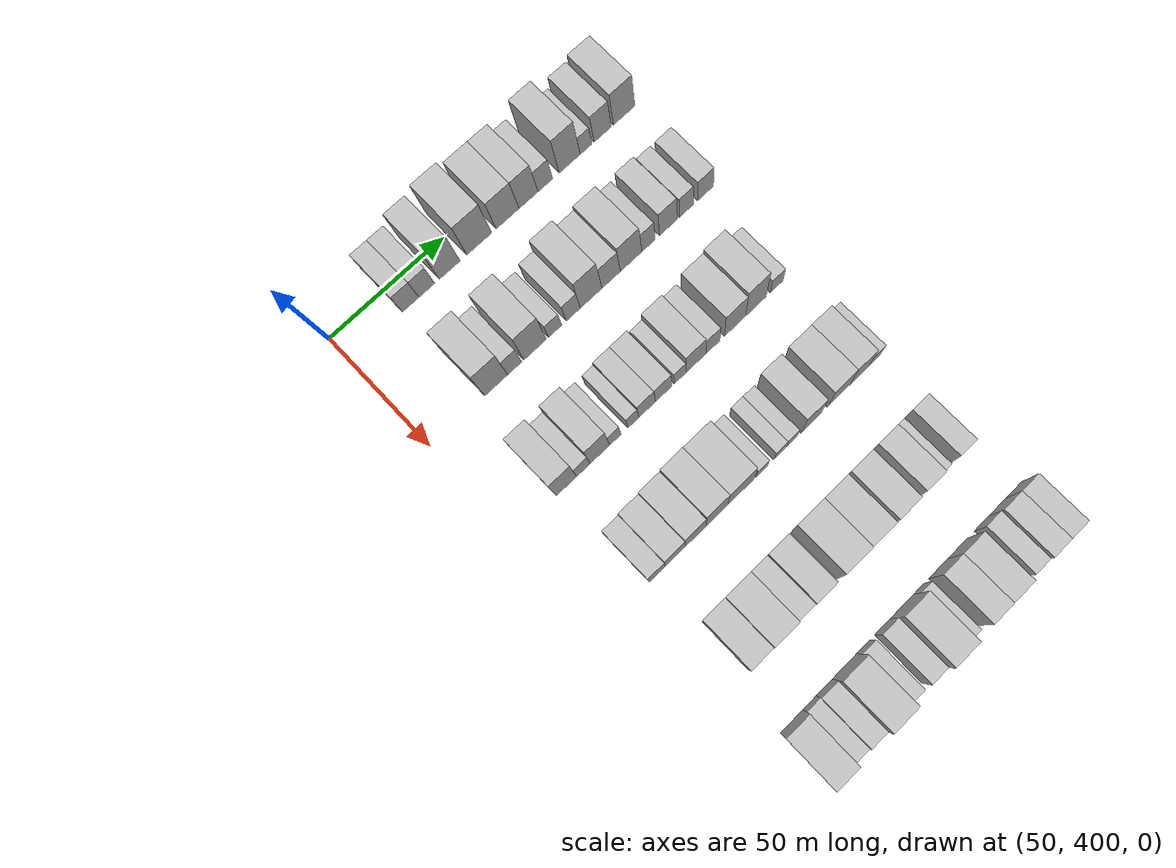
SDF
<sdf version="1.6">
 <world name="default">
  <model name="building_118">
   <static>1</static>
   <pose>50.0000 426.8114 0 0.000000 0.000000 0.000000</pose>
   <link name="link">
    <pose>0 0 7.50 0 0 0</pose>
    <collision name="collision"><geometry><box><size>20.0000 7.2259 15.0000</size></box></geometry></collision>
    <visual name="visual">
     <cast_shadows>0</cast_shadows>
     <geometry><box><size>20.0000 7.2259 15.0000</size></box></geometry>
     <material>
      <script>
       <uri>model://HANNAS_wall/materials/scripts</uri>
       <uri>model://HANNAS_wall/materials/textures</uri>
       <name>vrc/HANNAS_wall</name>
      </script>
     </material>
    </visual>
   </link>
  </model>
  <model name="building_119">
   <static>1</static>
   <pose>50.0000 433.8870 0 0.000000 0.000000 0.000000</pose>
   <link name="link">
    <pose>0 0 7.50 0 0 0</pose>
    <collision name="collision"><geometry><box><size>20.0000 6.9255 15.0000</size></box></geometry></collision>
    <visual name="visual">
     <cast_shadows>0</cast_shadows>
     <geometry><box><size>20.0000 6.9255 15.0000</size></box></geometry>
     <material>
      <script>
       <uri>model://HANNAS_wall/materials/scripts</uri>
       <uri>model://HANNAS_wall/materials/textures</uri>
       <name>vrc/HANNAS_wall</name>
      </script>
     </material>
    </visual>
   </link>
  </model>
  <model name="building_120">
   <static>1</static>
   <pose>50.0000 443.9383 0 0.000000 0.000000 0.000000</pose>
   <link name="link">
    <pose>0 0 10.50 0 0 0</pose>
    <collision name="collision"><geometry><box><size>20.0000 9.1771 21.0000</size></box></geometry></collision>
    <visual name="visual">
     <cast_shadows>0</cast_shadows>
     <geometry><box><size>20.0000 9.1771 21.0000</size></box></geometry>
     <material>
      <script>
       <uri>model://HANNAS_wall/materials/scripts</uri>
       <uri>model://HANNAS_wall/materials/textures</uri>
       <name>vrc/HANNAS_wall</name>
      </script>
     </material>
    </visual>
   </link>
  </model>
  <model name="building_121">
   <static>1</static>
   <pose>50.0000 457.0970 0 0.000000 0.000000 0.000000</pose>
   <link name="link">
    <pose>0 0 12.00 0 0 0</pose>
    <collision name="collision"><geometry><box><size>20.0000 11.1402 24.0000</size></box></geometry></collision>
    <visual name="visual">
     <cast_shadows>0</cast_shadows>
     <geometry><box><size>20.0000 11.1402 24.0000</size></box></geometry>
     <material>
      <script>
       <uri>model://HANNAS_wall/materials/scripts</uri>
       <uri>model://HANNAS_wall/materials/textures</uri>
       <name>vrc/HANNAS_wall</name>
      </script>
     </material>
    </visual>
   </link>
  </model>
  <model name="building_122">
   <static>1</static>
   <pose>50.0000 469.8556 0 0.000000 0.000000 0.000000</pose>
   <link name="link">
    <pose>0 0 10.50 0 0 0</pose>
    <collision name="collision"><geometry><box><size>20.0000 10.3770 21.0000</size></box></geometry></collision>
    <visual name="visual">
     <cast_shadows>0</cast_shadows>
     <geometry><box><size>20.0000 10.3770 21.0000</size></box></geometry>
     <material>
      <script>
       <uri>model://HANNAS_wall/materials/scripts</uri>
       <uri>model://HANNAS_wall/materials/textures</uri>
       <name>vrc/HANNAS_wall</name>
      </script>
     </material>
    </visual>
   </link>
  </model>
  <model name="building_123">
   <static>1</static>
   <pose>50.0000 479.3760 0 0.000000 0.000000 0.000000</pose>
   <link name="link">
    <pose>0 0 10.50 0 0 0</pose>
    <collision name="collision"><geometry><box><size>20.0000 8.6639 21.0000</size></box></geometry></collision>
    <visual name="visual">
     <cast_shadows>0</cast_shadows>
     <geometry><box><size>20.0000 8.6639 21.0000</size></box></geometry>
     <material>
      <script>
       <uri>model://HANNAS_wall/materials/scripts</uri>
       <uri>model://HANNAS_wall/materials/textures</uri>
       <name>vrc/HANNAS_wall</name>
      </script>
     </material>
    </visual>
   </link>
  </model>
  <model name="building_124">
   <static>1</static>
   <pose>50.0000 487.0819 0 0.000000 0.000000 0.000000</pose>
   <link name="link">
    <pose>0 0 7.50 0 0 0</pose>
    <collision name="collision"><geometry><box><size>20.0000 6.7478 15.0000</size></box></geometry></collision>
    <visual name="visual">
     <cast_shadows>0</cast_shadows>
     <geometry><box><size>20.0000 6.7478 15.0000</size></box></geometry>
     <material>
      <script>
       <uri>model://HANNAS_wall/materials/scripts</uri>
       <uri>model://HANNAS_wall/materials/textures</uri>
       <name>vrc/HANNAS_wall</name>
      </script>
     </material>
    </visual>
   </link>
  </model>
  <model name="building_125">
   <static>1</static>
   <pose>50.0000 498.3216 0 0.000000 0.000000 0.000000</pose>
   <link name="link">
    <pose>0 0 12.00 0 0 0</pose>
    <collision name="collision"><geometry><box><size>20.0000 9.7318 24.0000</size></box></geometry></collision>
    <visual name="visual">
     <cast_shadows>0</cast_shadows>
     <geometry><box><size>20.0000 9.7318 24.0000</size></box></geometry>
     <material>
      <script>
       <uri>model://HANNAS_wall/materials/scripts</uri>
       <uri>model://HANNAS_wall/materials/textures</uri>
       <name>vrc/HANNAS_wall</name>
      </script>
     </material>
    </visual>
   </link>
  </model>
  <model name="building_126">
   <static>1</static>
   <pose>50.0000 505.9289 0 0.000000 0.000000 0.000000</pose>
   <link name="link">
    <pose>0 0 6.00 0 0 0</pose>
    <collision name="collision"><geometry><box><size>20.0000 5.4828 12.0000</size></box></geometry></collision>
    <visual name="visual">
     <cast_shadows>0</cast_shadows>
     <geometry><box><size>20.0000 5.4828 12.0000</size></box></geometry>
     <material>
      <script>
       <uri>model://HANNAS_wall/materials/scripts</uri>
       <uri>model://HANNAS_wall/materials/textures</uri>
       <name>vrc/HANNAS_wall</name>
      </script>
     </material>
    </visual>
   </link>
  </model>
  <model name="building_127">
   <static>1</static>
   <pose>50.0000 513.7252 0 0.000000 0.000000 0.000000</pose>
   <link name="link">
    <pose>0 0 9.00 0 0 0</pose>
    <collision name="collision"><geometry><box><size>20.0000 8.1097 18.0000</size></box></geometry></collision>
    <visual name="visual">
     <cast_shadows>0</cast_shadows>
     <geometry><box><size>20.0000 8.1097 18.0000</size></box></geometry>
     <material>
      <script>
       <uri>model://HANNAS_wall/materials/scripts</uri>
       <uri>model://HANNAS_wall/materials/textures</uri>
       <name>vrc/HANNAS_wall</name>
      </script>
     </material>
    </visual>
   </link>
  </model>
  <model name="building_128">
   <static>1</static>
   <pose>50.0000 523.8451 0 0.000000 0.000000 0.000000</pose>
   <link name="link">
    <pose>0 0 10.50 0 0 0</pose>
    <collision name="collision"><geometry><box><size>20.0000 10.1301 21.0000</size></box></geometry></collision>
    <visual name="visual">
     <cast_shadows>0</cast_shadows>
     <geometry><box><size>20.0000 10.1301 21.0000</size></box></geometry>
     <material>
      <script>
       <uri>model://HANNAS_wall/materials/scripts</uri>
       <uri>model://HANNAS_wall/materials/textures</uri>
       <name>vrc/HANNAS_wall</name>
      </script>
     </material>
    </visual>
   </link>
  </model>
  <model name="building_256">
   <static>1</static>
   <pose>90.0000 428.6201 0 0.000000 0.000000 0.000000</pose>
   <link name="link">
    <pose>0 0 12.00 0 0 0</pose>
    <collision name="collision"><geometry><box><size>20.0000 9.9812 24.0000</size></box></geometry></collision>
    <visual name="visual">
     <cast_shadows>0</cast_shadows>
     <geometry><box><size>20.0000 9.9812 24.0000</size></box></geometry>
     <material>
      <script>
       <uri>model://HANNAS_wall/materials/scripts</uri>
       <uri>model://HANNAS_wall/materials/textures</uri>
       <name>vrc/HANNAS_wall</name>
      </script>
     </material>
    </visual>
   </link>
  </model>
  <model name="building_257">
   <static>1</static>
   <pose>90.0000 436.6834 0 0.000000 0.000000 0.000000</pose>
   <link name="link">
    <pose>0 0 7.50 0 0 0</pose>
    <collision name="collision"><geometry><box><size>20.0000 6.1454 15.0000</size></box></geometry></collision>
    <visual name="visual">
     <cast_shadows>0</cast_shadows>
     <geometry><box><size>20.0000 6.1454 15.0000</size></box></geometry>
     <material>
      <script>
       <uri>model://HANNAS_wall/materials/scripts</uri>
       <uri>model://HANNAS_wall/materials/textures</uri>
       <name>vrc/HANNAS_wall</name>
      </script>
     </material>
    </visual>
   </link>
  </model>
  <model name="building_258">
   <static>1</static>
   <pose>90.0000 445.7030 0 0.000000 0.000000 0.000000</pose>
   <link name="link">
    <pose>0 0 12.00 0 0 0</pose>
    <collision name="collision"><geometry><box><size>20.0000 9.8937 24.0000</size></box></geometry></collision>
    <visual name="visual">
     <cast_shadows>0</cast_shadows>
     <geometry><box><size>20.0000 9.8937 24.0000</size></box></geometry>
     <material>
      <script>
       <uri>model://HANNAS_wall/materials/scripts</uri>
       <uri>model://HANNAS_wall/materials/textures</uri>
       <name>vrc/HANNAS_wall</name>
      </script>
     </material>
    </visual>
   </link>
  </model>
  <model name="building_259">
   <static>1</static>
   <pose>90.0000 454.6156 0 0.000000 0.000000 0.000000</pose>
   <link name="link">
    <pose>0 0 6.00 0 0 0</pose>
    <collision name="collision"><geometry><box><size>20.0000 5.9315 12.0000</size></box></geometry></collision>
    <visual name="visual">
     <cast_shadows>0</cast_shadows>
     <geometry><box><size>20.0000 5.9315 12.0000</size></box></geometry>
     <material>
      <script>
       <uri>model://HANNAS_wall/materials/scripts</uri>
       <uri>model://HANNAS_wall/materials/textures</uri>
       <name>vrc/HANNAS_wall</name>
      </script>
     </material>
    </visual>
   </link>
  </model>
  <model name="building_260">
   <static>1</static>
   <pose>90.0000 462.7393 0 0.000000 0.000000 0.000000</pose>
   <link name="link">
    <pose>0 0 7.50 0 0 0</pose>
    <collision name="collision"><geometry><box><size>20.0000 6.3159 15.0000</size></box></geometry></collision>
    <visual name="visual">
     <cast_shadows>0</cast_shadows>
     <geometry><box><size>20.0000 6.3159 15.0000</size></box></geometry>
     <material>
      <script>
       <uri>model://HANNAS_wall/materials/scripts</uri>
       <uri>model://HANNAS_wall/materials/textures</uri>
       <name>vrc/HANNAS_wall</name>
      </script>
     </material>
    </visual>
   </link>
  </model>
  <model name="building_261">
   <static>1</static>
   <pose>90.0000 470.7719 0 0.000000 0.000000 0.000000</pose>
   <link name="link">
    <pose>0 0 12.00 0 0 0</pose>
    <collision name="collision"><geometry><box><size>20.0000 9.7494 24.0000</size></box></geometry></collision>
    <visual name="visual">
     <cast_shadows>0</cast_shadows>
     <geometry><box><size>20.0000 9.7494 24.0000</size></box></geometry>
     <material>
      <script>
       <uri>model://HANNAS_wall/materials/scripts</uri>
       <uri>model://HANNAS_wall/materials/textures</uri>
       <name>vrc/HANNAS_wall</name>
      </script>
     </material>
    </visual>
   </link>
  </model>
  <model name="building_262">
   <static>1</static>
   <pose>90.0000 479.8465 0 0.000000 0.000000 0.000000</pose>
   <link name="link">
    <pose>0 0 9.00 0 0 0</pose>
    <collision name="collision"><geometry><box><size>20.0000 8.3998 18.0000</size></box></geometry></collision>
    <visual name="visual">
     <cast_shadows>0</cast_shadows>
     <geometry><box><size>20.0000 8.3998 18.0000</size></box></geometry>
     <material>
      <script>
       <uri>model://HANNAS_wall/materials/scripts</uri>
       <uri>model://HANNAS_wall/materials/textures</uri>
       <name>vrc/HANNAS_wall</name>
      </script>
     </material>
    </visual>
   </link>
  </model>
  <model name="building_263">
   <static>1</static>
   <pose>90.0000 488.9902 0 0.000000 0.000000 0.000000</pose>
   <link name="link">
    <pose>0 0 10.50 0 0 0</pose>
    <collision name="collision"><geometry><box><size>20.0000 9.8877 21.0000</size></box></geometry></collision>
    <visual name="visual">
     <cast_shadows>0</cast_shadows>
     <geometry><box><size>20.0000 9.8877 21.0000</size></box></geometry>
     <material>
      <script>
       <uri>model://HANNAS_wall/materials/scripts</uri>
       <uri>model://HANNAS_wall/materials/textures</uri>
       <name>vrc/HANNAS_wall</name>
      </script>
     </material>
    </visual>
   </link>
  </model>
  <model name="building_264">
   <static>1</static>
   <pose>90.0000 497.0263 0 0.000000 0.000000 0.000000</pose>
   <link name="link">
    <pose>0 0 7.50 0 0 0</pose>
    <collision name="collision"><geometry><box><size>20.0000 6.1845 15.0000</size></box></geometry></collision>
    <visual name="visual">
     <cast_shadows>0</cast_shadows>
     <geometry><box><size>20.0000 6.1845 15.0000</size></box></geometry>
     <material>
      <script>
       <uri>model://HANNAS_wall/materials/scripts</uri>
       <uri>model://HANNAS_wall/materials/textures</uri>
       <name>vrc/HANNAS_wall</name>
      </script>
     </material>
    </visual>
   </link>
  </model>
  <model name="building_265">
   <static>1</static>
   <pose>90.0000 506.2481 0 0.000000 0.000000 0.000000</pose>
   <link name="link">
    <pose>0 0 9.00 0 0 0</pose>
    <collision name="collision"><geometry><box><size>20.0000 8.2591 18.0000</size></box></geometry></collision>
    <visual name="visual">
     <cast_shadows>0</cast_shadows>
     <geometry><box><size>20.0000 8.2591 18.0000</size></box></geometry>
     <material>
      <script>
       <uri>model://HANNAS_wall/materials/scripts</uri>
       <uri>model://HANNAS_wall/materials/textures</uri>
       <name>vrc/HANNAS_wall</name>
      </script>
     </material>
    </visual>
   </link>
  </model>
  <model name="building_266">
   <static>1</static>
   <pose>90.0000 514.6310 0 0.000000 0.000000 0.000000</pose>
   <link name="link">
    <pose>0 0 7.50 0 0 0</pose>
    <collision name="collision"><geometry><box><size>20.0000 6.5067 15.0000</size></box></geometry></collision>
    <visual name="visual">
     <cast_shadows>0</cast_shadows>
     <geometry><box><size>20.0000 6.5067 15.0000</size></box></geometry>
     <material>
      <script>
       <uri>model://HANNAS_wall/materials/scripts</uri>
       <uri>model://HANNAS_wall/materials/textures</uri>
       <name>vrc/HANNAS_wall</name>
      </script>
     </material>
    </visual>
   </link>
  </model>
  <model name="building_267">
   <static>1</static>
   <pose>90.0000 523.6233 0 0.000000 0.000000 0.000000</pose>
   <link name="link">
    <pose>0 0 7.50 0 0 0</pose>
    <collision name="collision"><geometry><box><size>20.0000 7.4780 15.0000</size></box></geometry></collision>
    <visual name="visual">
     <cast_shadows>0</cast_shadows>
     <geometry><box><size>20.0000 7.4780 15.0000</size></box></geometry>
     <material>
      <script>
       <uri>model://HANNAS_wall/materials/scripts</uri>
       <uri>model://HANNAS_wall/materials/textures</uri>
       <name>vrc/HANNAS_wall</name>
      </script>
     </material>
    </visual>
   </link>
  </model>
  <model name="building_400">
   <static>1</static>
   <pose>130.0000 422.5033 0 0.000000 0.000000 0.000000</pose>
   <link name="link">
    <pose>0 0 10.50 0 0 0</pose>
    <collision name="collision"><geometry><box><size>20.0000 8.7504 21.0000</size></box></geometry></collision>
    <visual name="visual">
     <cast_shadows>0</cast_shadows>
     <geometry><box><size>20.0000 8.7504 21.0000</size></box></geometry>
     <material>
      <script>
       <uri>model://HANNAS_wall/materials/scripts</uri>
       <uri>model://HANNAS_wall/materials/textures</uri>
       <name>vrc/HANNAS_wall</name>
      </script>
     </material>
    </visual>
   </link>
  </model>
  <model name="building_401">
   <static>1</static>
   <pose>130.0000 429.8107 0 0.000000 0.000000 0.000000</pose>
   <link name="link">
    <pose>0 0 6.00 0 0 0</pose>
    <collision name="collision"><geometry><box><size>20.0000 5.8643 12.0000</size></box></geometry></collision>
    <visual name="visual">
     <cast_shadows>0</cast_shadows>
     <geometry><box><size>20.0000 5.8643 12.0000</size></box></geometry>
     <material>
      <script>
       <uri>model://HANNAS_wall/materials/scripts</uri>
       <uri>model://HANNAS_wall/materials/textures</uri>
       <name>vrc/HANNAS_wall</name>
      </script>
     </material>
    </visual>
   </link>
  </model>
  <model name="building_402">
   <static>1</static>
   <pose>130.0000 437.0281 0 0.000000 0.000000 0.000000</pose>
   <link name="link">
    <pose>0 0 10.50 0 0 0</pose>
    <collision name="collision"><geometry><box><size>20.0000 8.5706 21.0000</size></box></geometry></collision>
    <visual name="visual">
     <cast_shadows>0</cast_shadows>
     <geometry><box><size>20.0000 8.5706 21.0000</size></box></geometry>
     <material>
      <script>
       <uri>model://HANNAS_wall/materials/scripts</uri>
       <uri>model://HANNAS_wall/materials/textures</uri>
       <name>vrc/HANNAS_wall</name>
      </script>
     </material>
    </visual>
   </link>
  </model>
  <model name="building_403">
   <static>1</static>
   <pose>130.0000 443.8435 0 0.000000 0.000000 0.000000</pose>
   <link name="link">
    <pose>0 0 6.00 0 0 0</pose>
    <collision name="collision"><geometry><box><size>20.0000 5.0601 12.0000</size></box></geometry></collision>
    <visual name="visual">
     <cast_shadows>0</cast_shadows>
     <geometry><box><size>20.0000 5.0601 12.0000</size></box></geometry>
     <material>
      <script>
       <uri>model://HANNAS_wall/materials/scripts</uri>
       <uri>model://HANNAS_wall/materials/textures</uri>
       <name>vrc/HANNAS_wall</name>
      </script>
     </material>
    </visual>
   </link>
  </model>
  <model name="building_404">
   <static>1</static>
   <pose>130.0000 451.8085 0 0.000000 0.000000 0.000000</pose>
   <link name="link">
    <pose>0 0 6.00 0 0 0</pose>
    <collision name="collision"><geometry><box><size>20.0000 4.8699 12.0000</size></box></geometry></collision>
    <visual name="visual">
     <cast_shadows>0</cast_shadows>
     <geometry><box><size>20.0000 4.8699 12.0000</size></box></geometry>
     <material>
      <script>
       <uri>model://HANNAS_wall/materials/scripts</uri>
       <uri>model://HANNAS_wall/materials/textures</uri>
       <name>vrc/HANNAS_wall</name>
      </script>
     </material>
    </visual>
   </link>
  </model>
  <model name="building_405">
   <static>1</static>
   <pose>130.0000 457.9557 0 0.000000 0.000000 0.000000</pose>
   <link name="link">
    <pose>0 0 7.50 0 0 0</pose>
    <collision name="collision"><geometry><box><size>20.0000 7.4245 15.0000</size></box></geometry></collision>
    <visual name="visual">
     <cast_shadows>0</cast_shadows>
     <geometry><box><size>20.0000 7.4245 15.0000</size></box></geometry>
     <material>
      <script>
       <uri>model://HANNAS_wall/materials/scripts</uri>
       <uri>model://HANNAS_wall/materials/textures</uri>
       <name>vrc/HANNAS_wall</name>
      </script>
     </material>
    </visual>
   </link>
  </model>
  <model name="building_406">
   <static>1</static>
   <pose>130.0000 465.3787 0 0.000000 0.000000 0.000000</pose>
   <link name="link">
    <pose>0 0 7.50 0 0 0</pose>
    <collision name="collision"><geometry><box><size>20.0000 7.4216 15.0000</size></box></geometry></collision>
    <visual name="visual">
     <cast_shadows>0</cast_shadows>
     <geometry><box><size>20.0000 7.4216 15.0000</size></box></geometry>
     <material>
      <script>
       <uri>model://HANNAS_wall/materials/scripts</uri>
       <uri>model://HANNAS_wall/materials/textures</uri>
       <name>vrc/HANNAS_wall</name>
      </script>
     </material>
    </visual>
   </link>
  </model>
  <model name="building_407">
   <static>1</static>
   <pose>130.0000 472.7820 0 0.000000 0.000000 0.000000</pose>
   <link name="link">
    <pose>0 0 6.00 0 0 0</pose>
    <collision name="collision"><geometry><box><size>20.0000 5.3851 12.0000</size></box></geometry></collision>
    <visual name="visual">
     <cast_shadows>0</cast_shadows>
     <geometry><box><size>20.0000 5.3851 12.0000</size></box></geometry>
     <material>
      <script>
       <uri>model://HANNAS_wall/materials/scripts</uri>
       <uri>model://HANNAS_wall/materials/textures</uri>
       <name>vrc/HANNAS_wall</name>
      </script>
     </material>
    </visual>
   </link>
  </model>
  <model name="building_408">
   <static>1</static>
   <pose>130.0000 479.9582 0 0.000000 0.000000 0.000000</pose>
   <link name="link">
    <pose>0 0 9.00 0 0 0</pose>
    <collision name="collision"><geometry><box><size>20.0000 8.9673 18.0000</size></box></geometry></collision>
    <visual name="visual">
     <cast_shadows>0</cast_shadows>
     <geometry><box><size>20.0000 8.9673 18.0000</size></box></geometry>
     <material>
      <script>
       <uri>model://HANNAS_wall/materials/scripts</uri>
       <uri>model://HANNAS_wall/materials/textures</uri>
       <name>vrc/HANNAS_wall</name>
      </script>
     </material>
    </visual>
   </link>
  </model>
  <model name="building_409">
   <static>1</static>
   <pose>130.0000 487.6770 0 0.000000 0.000000 0.000000</pose>
   <link name="link">
    <pose>0 0 7.50 0 0 0</pose>
    <collision name="collision"><geometry><box><size>20.0000 6.4703 15.0000</size></box></geometry></collision>
    <visual name="visual">
     <cast_shadows>0</cast_shadows>
     <geometry><box><size>20.0000 6.4703 15.0000</size></box></geometry>
     <material>
      <script>
       <uri>model://HANNAS_wall/materials/scripts</uri>
       <uri>model://HANNAS_wall/materials/textures</uri>
       <name>vrc/HANNAS_wall</name>
      </script>
     </material>
    </visual>
   </link>
  </model>
  <model name="building_410">
   <static>1</static>
   <pose>130.0000 497.7847 0 0.000000 0.000000 0.000000</pose>
   <link name="link">
    <pose>0 0 10.50 0 0 0</pose>
    <collision name="collision"><geometry><box><size>20.0000 9.7451 21.0000</size></box></geometry></collision>
    <visual name="visual">
     <cast_shadows>0</cast_shadows>
     <geometry><box><size>20.0000 9.7451 21.0000</size></box></geometry>
     <material>
      <script>
       <uri>model://HANNAS_wall/materials/scripts</uri>
       <uri>model://HANNAS_wall/materials/textures</uri>
       <name>vrc/HANNAS_wall</name>
      </script>
     </material>
    </visual>
   </link>
  </model>
  <model name="building_411">
   <static>1</static>
   <pose>130.0000 507.4720 0 0.000000 0.000000 0.000000</pose>
   <link name="link">
    <pose>0 0 12.00 0 0 0</pose>
    <collision name="collision"><geometry><box><size>20.0000 9.6294 24.0000</size></box></geometry></collision>
    <visual name="visual">
     <cast_shadows>0</cast_shadows>
     <geometry><box><size>20.0000 9.6294 24.0000</size></box></geometry>
     <material>
      <script>
       <uri>model://HANNAS_wall/materials/scripts</uri>
       <uri>model://HANNAS_wall/materials/textures</uri>
       <name>vrc/HANNAS_wall</name>
      </script>
     </material>
    </visual>
   </link>
  </model>
  <model name="building_412">
   <static>1</static>
   <pose>130.0000 517.2540 0 0.000000 0.000000 0.000000</pose>
   <link name="link">
    <pose>0 0 6.00 0 0 0</pose>
    <collision name="collision"><geometry><box><size>20.0000 5.9347 12.0000</size></box></geometry></collision>
    <visual name="visual">
     <cast_shadows>0</cast_shadows>
     <geometry><box><size>20.0000 5.9347 12.0000</size></box></geometry>
     <material>
      <script>
       <uri>model://HANNAS_wall/materials/scripts</uri>
       <uri>model://HANNAS_wall/materials/textures</uri>
       <name>vrc/HANNAS_wall</name>
      </script>
     </material>
    </visual>
   </link>
  </model>
  <model name="building_546">
   <static>1</static>
   <pose>170.0000 423.9746 0 0.000000 0.000000 0.000000</pose>
   <link name="link">
    <pose>0 0 7.50 0 0 0</pose>
    <collision name="collision"><geometry><box><size>20.0000 6.9885 15.0000</size></box></geometry></collision>
    <visual name="visual">
     <cast_shadows>0</cast_shadows>
     <geometry><box><size>20.0000 6.9885 15.0000</size></box></geometry>
     <material>
      <script>
       <uri>model://HANNAS_wall/materials/scripts</uri>
       <uri>model://HANNAS_wall/materials/textures</uri>
       <name>vrc/HANNAS_wall</name>
      </script>
     </material>
    </visual>
   </link>
  </model>
  <model name="building_547">
   <static>1</static>
   <pose>170.0000 431.7851 0 0.000000 0.000000 0.000000</pose>
   <link name="link">
    <pose>0 0 9.00 0 0 0</pose>
    <collision name="collision"><geometry><box><size>20.0000 8.6325 18.0000</size></box></geometry></collision>
    <visual name="visual">
     <cast_shadows>0</cast_shadows>
     <geometry><box><size>20.0000 8.6325 18.0000</size></box></geometry>
     <material>
      <script>
       <uri>model://HANNAS_wall/materials/scripts</uri>
       <uri>model://HANNAS_wall/materials/textures</uri>
       <name>vrc/HANNAS_wall</name>
      </script>
     </material>
    </visual>
   </link>
  </model>
  <model name="building_548">
   <static>1</static>
   <pose>170.0000 440.6282 0 0.000000 0.000000 0.000000</pose>
   <link name="link">
    <pose>0 0 10.50 0 0 0</pose>
    <collision name="collision"><geometry><box><size>20.0000 9.0537 21.0000</size></box></geometry></collision>
    <visual name="visual">
     <cast_shadows>0</cast_shadows>
     <geometry><box><size>20.0000 9.0537 21.0000</size></box></geometry>
     <material>
      <script>
       <uri>model://HANNAS_wall/materials/scripts</uri>
       <uri>model://HANNAS_wall/materials/textures</uri>
       <name>vrc/HANNAS_wall</name>
      </script>
     </material>
    </visual>
   </link>
  </model>
  <model name="building_549">
   <static>1</static>
   <pose>170.0000 449.9596 0 0.000000 0.000000 0.000000</pose>
   <link name="link">
    <pose>0 0 12.00 0 0 0</pose>
    <collision name="collision"><geometry><box><size>20.0000 9.6090 24.0000</size></box></geometry></collision>
    <visual name="visual">
     <cast_shadows>0</cast_shadows>
     <geometry><box><size>20.0000 9.6090 24.0000</size></box></geometry>
     <material>
      <script>
       <uri>model://HANNAS_wall/materials/scripts</uri>
       <uri>model://HANNAS_wall/materials/textures</uri>
       <name>vrc/HANNAS_wall</name>
      </script>
     </material>
    </visual>
   </link>
  </model>
  <model name="building_550">
   <static>1</static>
   <pose>170.0000 460.5825 0 0.000000 0.000000 0.000000</pose>
   <link name="link">
    <pose>0 0 12.00 0 0 0</pose>
    <collision name="collision"><geometry><box><size>20.0000 11.6369 24.0000</size></box></geometry></collision>
    <visual name="visual">
     <cast_shadows>0</cast_shadows>
     <geometry><box><size>20.0000 11.6369 24.0000</size></box></geometry>
     <material>
      <script>
       <uri>model://HANNAS_wall/materials/scripts</uri>
       <uri>model://HANNAS_wall/materials/textures</uri>
       <name>vrc/HANNAS_wall</name>
      </script>
     </material>
    </visual>
   </link>
  </model>
  <model name="building_551">
   <static>1</static>
   <pose>170.0000 469.9690 0 0.000000 0.000000 0.000000</pose>
   <link name="link">
    <pose>0 0 6.00 0 0 0</pose>
    <collision name="collision"><geometry><box><size>20.0000 5.1360 12.0000</size></box></geometry></collision>
    <visual name="visual">
     <cast_shadows>0</cast_shadows>
     <geometry><box><size>20.0000 5.1360 12.0000</size></box></geometry>
     <material>
      <script>
       <uri>model://HANNAS_wall/materials/scripts</uri>
       <uri>model://HANNAS_wall/materials/textures</uri>
       <name>vrc/HANNAS_wall</name>
      </script>
     </material>
    </visual>
   </link>
  </model>
  <model name="building_552">
   <static>1</static>
   <pose>170.0000 478.1620 0 0.000000 0.000000 0.000000</pose>
   <link name="link">
    <pose>0 0 6.00 0 0 0</pose>
    <collision name="collision"><geometry><box><size>20.0000 5.2501 12.0000</size></box></geometry></collision>
    <visual name="visual">
     <cast_shadows>0</cast_shadows>
     <geometry><box><size>20.0000 5.2501 12.0000</size></box></geometry>
     <material>
      <script>
       <uri>model://HANNAS_wall/materials/scripts</uri>
       <uri>model://HANNAS_wall/materials/textures</uri>
       <name>vrc/HANNAS_wall</name>
      </script>
     </material>
    </visual>
   </link>
  </model>
  <model name="building_553">
   <static>1</static>
   <pose>170.0000 483.3415 0 0.000000 0.000000 0.000000</pose>
   <link name="link">
    <pose>0 0 6.00 0 0 0</pose>
    <collision name="collision"><geometry><box><size>20.0000 5.1090 12.0000</size></box></geometry></collision>
    <visual name="visual">
     <cast_shadows>0</cast_shadows>
     <geometry><box><size>20.0000 5.1090 12.0000</size></box></geometry>
     <material>
      <script>
       <uri>model://HANNAS_wall/materials/scripts</uri>
       <uri>model://HANNAS_wall/materials/textures</uri>
       <name>vrc/HANNAS_wall</name>
      </script>
     </material>
    </visual>
   </link>
  </model>
  <model name="building_554">
   <static>1</static>
   <pose>170.0000 492.4625 0 0.000000 0.000000 0.000000</pose>
   <link name="link">
    <pose>0 0 10.50 0 0 0</pose>
    <collision name="collision"><geometry><box><size>20.0000 9.1330 21.0000</size></box></geometry></collision>
    <visual name="visual">
     <cast_shadows>0</cast_shadows>
     <geometry><box><size>20.0000 9.1330 21.0000</size></box></geometry>
     <material>
      <script>
       <uri>model://HANNAS_wall/materials/scripts</uri>
       <uri>model://HANNAS_wall/materials/textures</uri>
       <name>vrc/HANNAS_wall</name>
      </script>
     </material>
    </visual>
   </link>
  </model>
  <model name="building_555">
   <static>1</static>
   <pose>170.0000 505.1767 0 0.000000 0.000000 0.000000</pose>
   <link name="link">
    <pose>0 0 10.50 0 0 0</pose>
    <collision name="collision"><geometry><box><size>20.0000 10.2952 21.0000</size></box></geometry></collision>
    <visual name="visual">
     <cast_shadows>0</cast_shadows>
     <geometry><box><size>20.0000 10.2952 21.0000</size></box></geometry>
     <material>
      <script>
       <uri>model://HANNAS_wall/materials/scripts</uri>
       <uri>model://HANNAS_wall/materials/textures</uri>
       <name>vrc/HANNAS_wall</name>
      </script>
     </material>
    </visual>
   </link>
  </model>
  <model name="building_556">
   <static>1</static>
   <pose>170.0000 514.7450 0 0.000000 0.000000 0.000000</pose>
   <link name="link">
    <pose>0 0 10.50 0 0 0</pose>
    <collision name="collision"><geometry><box><size>20.0000 8.8415 21.0000</size></box></geometry></collision>
    <visual name="visual">
     <cast_shadows>0</cast_shadows>
     <geometry><box><size>20.0000 8.8415 21.0000</size></box></geometry>
     <material>
      <script>
       <uri>model://HANNAS_wall/materials/scripts</uri>
       <uri>model://HANNAS_wall/materials/textures</uri>
       <name>vrc/HANNAS_wall</name>
      </script>
     </material>
    </visual>
   </link>
  </model>
  <model name="building_557">
   <static>1</static>
   <pose>170.0000 521.9874 0 0.000000 0.000000 0.000000</pose>
   <link name="link">
    <pose>0 0 6.00 0 0 0</pose>
    <collision name="collision"><geometry><box><size>20.0000 5.6432 12.0000</size></box></geometry></collision>
    <visual name="visual">
     <cast_shadows>0</cast_shadows>
     <geometry><box><size>20.0000 5.6432 12.0000</size></box></geometry>
     <material>
      <script>
       <uri>model://HANNAS_wall/materials/scripts</uri>
       <uri>model://HANNAS_wall/materials/textures</uri>
       <name>vrc/HANNAS_wall</name>
      </script>
     </material>
    </visual>
   </link>
  </model>
  <model name="building_691">
   <static>1</static>
   <pose>210.0000 428.4066 0 0.000000 0.000000 0.000000</pose>
   <link name="link">
    <pose>0 0 10.50 0 0 0</pose>
    <collision name="collision"><geometry><box><size>20.0000 9.2954 21.0000</size></box></geometry></collision>
    <visual name="visual">
     <cast_shadows>0</cast_shadows>
     <geometry><box><size>20.0000 9.2954 21.0000</size></box></geometry>
     <material>
      <script>
       <uri>model://HANNAS_wall/materials/scripts</uri>
       <uri>model://HANNAS_wall/materials/textures</uri>
       <name>vrc/HANNAS_wall</name>
      </script>
     </material>
    </visual>
   </link>
  </model>
  <model name="building_692">
   <static>1</static>
   <pose>210.0000 438.2627 0 0.000000 0.000000 0.000000</pose>
   <link name="link">
    <pose>0 0 12.00 0 0 0</pose>
    <collision name="collision"><geometry><box><size>20.0000 10.4168 24.0000</size></box></geometry></collision>
    <visual name="visual">
     <cast_shadows>0</cast_shadows>
     <geometry><box><size>20.0000 10.4168 24.0000</size></box></geometry>
     <material>
      <script>
       <uri>model://HANNAS_wall/materials/scripts</uri>
       <uri>model://HANNAS_wall/materials/textures</uri>
       <name>vrc/HANNAS_wall</name>
      </script>
     </material>
    </visual>
   </link>
  </model>
  <model name="building_693">
   <static>1</static>
   <pose>210.0000 447.1938 0 0.000000 0.000000 0.000000</pose>
   <link name="link">
    <pose>0 0 9.00 0 0 0</pose>
    <collision name="collision"><geometry><box><size>20.0000 7.4453 18.0000</size></box></geometry></collision>
    <visual name="visual">
     <cast_shadows>0</cast_shadows>
     <geometry><box><size>20.0000 7.4453 18.0000</size></box></geometry>
     <material>
      <script>
       <uri>model://HANNAS_wall/materials/scripts</uri>
       <uri>model://HANNAS_wall/materials/textures</uri>
       <name>vrc/HANNAS_wall</name>
      </script>
     </material>
    </visual>
   </link>
  </model>
  <model name="building_694">
   <static>1</static>
   <pose>210.0000 455.3015 0 0.000000 0.000000 0.000000</pose>
   <link name="link">
    <pose>0 0 10.50 0 0 0</pose>
    <collision name="collision"><geometry><box><size>20.0000 8.7702 21.0000</size></box></geometry></collision>
    <visual name="visual">
     <cast_shadows>0</cast_shadows>
     <geometry><box><size>20.0000 8.7702 21.0000</size></box></geometry>
     <material>
      <script>
       <uri>model://HANNAS_wall/materials/scripts</uri>
       <uri>model://HANNAS_wall/materials/textures</uri>
       <name>vrc/HANNAS_wall</name>
      </script>
     </material>
    </visual>
   </link>
  </model>
  <model name="building_695">
   <static>1</static>
   <pose>210.0000 468.3827 0 0.000000 0.000000 0.000000</pose>
   <link name="link">
    <pose>0 0 12.00 0 0 0</pose>
    <collision name="collision"><geometry><box><size>20.0000 11.3923 24.0000</size></box></geometry></collision>
    <visual name="visual">
     <cast_shadows>0</cast_shadows>
     <geometry><box><size>20.0000 11.3923 24.0000</size></box></geometry>
     <material>
      <script>
       <uri>model://HANNAS_wall/materials/scripts</uri>
       <uri>model://HANNAS_wall/materials/textures</uri>
       <name>vrc/HANNAS_wall</name>
      </script>
     </material>
    </visual>
   </link>
  </model>
  <model name="building_696">
   <static>1</static>
   <pose>210.0000 479.2161 0 0.000000 0.000000 0.000000</pose>
   <link name="link">
    <pose>0 0 12.00 0 0 0</pose>
    <collision name="collision"><geometry><box><size>20.0000 10.2746 24.0000</size></box></geometry></collision>
    <visual name="visual">
     <cast_shadows>0</cast_shadows>
     <geometry><box><size>20.0000 10.2746 24.0000</size></box></geometry>
     <material>
      <script>
       <uri>model://HANNAS_wall/materials/scripts</uri>
       <uri>model://HANNAS_wall/materials/textures</uri>
       <name>vrc/HANNAS_wall</name>
      </script>
     </material>
    </visual>
   </link>
  </model>
  <model name="building_697">
   <static>1</static>
   <pose>210.0000 490.1740 0 0.000000 0.000000 0.000000</pose>
   <link name="link">
    <pose>0 0 12.00 0 0 0</pose>
    <collision name="collision"><geometry><box><size>20.0000 9.6411 24.0000</size></box></geometry></collision>
    <visual name="visual">
     <cast_shadows>0</cast_shadows>
     <geometry><box><size>20.0000 9.6411 24.0000</size></box></geometry>
     <material>
      <script>
       <uri>model://HANNAS_wall/materials/scripts</uri>
       <uri>model://HANNAS_wall/materials/textures</uri>
       <name>vrc/HANNAS_wall</name>
      </script>
     </material>
    </visual>
   </link>
  </model>
  <model name="building_698">
   <static>1</static>
   <pose>210.0000 502.3374 0 0.000000 0.000000 0.000000</pose>
   <link name="link">
    <pose>0 0 10.50 0 0 0</pose>
    <collision name="collision"><geometry><box><size>20.0000 8.6857 21.0000</size></box></geometry></collision>
    <visual name="visual">
     <cast_shadows>0</cast_shadows>
     <geometry><box><size>20.0000 8.6857 21.0000</size></box></geometry>
     <material>
      <script>
       <uri>model://HANNAS_wall/materials/scripts</uri>
       <uri>model://HANNAS_wall/materials/textures</uri>
       <name>vrc/HANNAS_wall</name>
      </script>
     </material>
    </visual>
   </link>
  </model>
  <model name="building_699">
   <static>1</static>
   <pose>210.0000 509.2743 0 0.000000 0.000000 0.000000</pose>
   <link name="link">
    <pose>0 0 6.00 0 0 0</pose>
    <collision name="collision"><geometry><box><size>20.0000 5.1880 12.0000</size></box></geometry></collision>
    <visual name="visual">
     <cast_shadows>0</cast_shadows>
     <geometry><box><size>20.0000 5.1880 12.0000</size></box></geometry>
     <material>
      <script>
       <uri>model://HANNAS_wall/materials/scripts</uri>
       <uri>model://HANNAS_wall/materials/textures</uri>
       <name>vrc/HANNAS_wall</name>
      </script>
     </material>
    </visual>
   </link>
  </model>
  <model name="building_700">
   <static>1</static>
   <pose>210.0000 517.5326 0 0.000000 0.000000 0.000000</pose>
   <link name="link">
    <pose>0 0 9.00 0 0 0</pose>
    <collision name="collision"><geometry><box><size>20.0000 7.3286 18.0000</size></box></geometry></collision>
    <visual name="visual">
     <cast_shadows>0</cast_shadows>
     <geometry><box><size>20.0000 7.3286 18.0000</size></box></geometry>
     <material>
      <script>
       <uri>model://HANNAS_wall/materials/scripts</uri>
       <uri>model://HANNAS_wall/materials/textures</uri>
       <name>vrc/HANNAS_wall</name>
      </script>
     </material>
    </visual>
   </link>
  </model>
  <model name="building_827">
   <static>1</static>
   <pose>250.0000 422.4611 0 0.000000 0.000000 0.000000</pose>
   <link name="link">
    <pose>0 0 10.50 0 0 0</pose>
    <collision name="collision"><geometry><box><size>20.0000 9.6689 21.0000</size></box></geometry></collision>
    <visual name="visual">
     <cast_shadows>0</cast_shadows>
     <geometry><box><size>20.0000 9.6689 21.0000</size></box></geometry>
     <material>
      <script>
       <uri>model://HANNAS_wall/materials/scripts</uri>
       <uri>model://HANNAS_wall/materials/textures</uri>
       <name>vrc/HANNAS_wall</name>
      </script>
     </material>
    </visual>
   </link>
  </model>
  <model name="building_828">
   <static>1</static>
   <pose>250.0000 430.1929 0 0.000000 0.000000 0.000000</pose>
   <link name="link">
    <pose>0 0 6.00 0 0 0</pose>
    <collision name="collision"><geometry><box><size>20.0000 5.7946 12.0000</size></box></geometry></collision>
    <visual name="visual">
     <cast_shadows>0</cast_shadows>
     <geometry><box><size>20.0000 5.7946 12.0000</size></box></geometry>
     <material>
      <script>
       <uri>model://HANNAS_wall/materials/scripts</uri>
       <uri>model://HANNAS_wall/materials/textures</uri>
       <name>vrc/HANNAS_wall</name>
      </script>
     </material>
    </visual>
   </link>
  </model>
  <model name="building_829">
   <static>1</static>
   <pose>250.0000 436.6326 0 0.000000 0.000000 0.000000</pose>
   <link name="link">
    <pose>0 0 7.50 0 0 0</pose>
    <collision name="collision"><geometry><box><size>20.0000 7.0848 15.0000</size></box></geometry></collision>
    <visual name="visual">
     <cast_shadows>0</cast_shadows>
     <geometry><box><size>20.0000 7.0848 15.0000</size></box></geometry>
     <material>
      <script>
       <uri>model://HANNAS_wall/materials/scripts</uri>
       <uri>model://HANNAS_wall/materials/textures</uri>
       <name>vrc/HANNAS_wall</name>
      </script>
     </material>
    </visual>
   </link>
  </model>
  <model name="building_830">
   <static>1</static>
   <pose>250.0000 445.5483 0 0.000000 0.000000 0.000000</pose>
   <link name="link">
    <pose>0 0 12.00 0 0 0</pose>
    <collision name="collision"><geometry><box><size>20.0000 10.7466 24.0000</size></box></geometry></collision>
    <visual name="visual">
     <cast_shadows>0</cast_shadows>
     <geometry><box><size>20.0000 10.7466 24.0000</size></box></geometry>
     <material>
      <script>
       <uri>model://HANNAS_wall/materials/scripts</uri>
       <uri>model://HANNAS_wall/materials/textures</uri>
       <name>vrc/HANNAS_wall</name>
      </script>
     </material>
    </visual>
   </link>
  </model>
  <model name="building_831">
   <static>1</static>
   <pose>250.0000 453.8749 0 0.000000 0.000000 0.000000</pose>
   <link name="link">
    <pose>0 0 6.00 0 0 0</pose>
    <collision name="collision"><geometry><box><size>20.0000 5.9066 12.0000</size></box></geometry></collision>
    <visual name="visual">
     <cast_shadows>0</cast_shadows>
     <geometry><box><size>20.0000 5.9066 12.0000</size></box></geometry>
     <material>
      <script>
       <uri>model://HANNAS_wall/materials/scripts</uri>
       <uri>model://HANNAS_wall/materials/textures</uri>
       <name>vrc/HANNAS_wall</name>
      </script>
     </material>
    </visual>
   </link>
  </model>
  <model name="building_832">
   <static>1</static>
   <pose>250.0000 462.3567 0 0.000000 0.000000 0.000000</pose>
   <link name="link">
    <pose>0 0 7.50 0 0 0</pose>
    <collision name="collision"><geometry><box><size>20.0000 7.0570 15.0000</size></box></geometry></collision>
    <visual name="visual">
     <cast_shadows>0</cast_shadows>
     <geometry><box><size>20.0000 7.0570 15.0000</size></box></geometry>
     <material>
      <script>
       <uri>model://HANNAS_wall/materials/scripts</uri>
       <uri>model://HANNAS_wall/materials/textures</uri>
       <name>vrc/HANNAS_wall</name>
      </script>
     </material>
    </visual>
   </link>
  </model>
  <model name="building_833">
   <static>1</static>
   <pose>250.0000 471.2005 0 0.000000 0.000000 0.000000</pose>
   <link name="link">
    <pose>0 0 12.00 0 0 0</pose>
    <collision name="collision"><geometry><box><size>20.0000 10.6306 24.0000</size></box></geometry></collision>
    <visual name="visual">
     <cast_shadows>0</cast_shadows>
     <geometry><box><size>20.0000 10.6306 24.0000</size></box></geometry>
     <material>
      <script>
       <uri>model://HANNAS_wall/materials/scripts</uri>
       <uri>model://HANNAS_wall/materials/textures</uri>
       <name>vrc/HANNAS_wall</name>
      </script>
     </material>
    </visual>
   </link>
  </model>
  <model name="building_834">
   <static>1</static>
   <pose>250.0000 478.9506 0 0.000000 0.000000 0.000000</pose>
   <link name="link">
    <pose>0 0 6.00 0 0 0</pose>
    <collision name="collision"><geometry><box><size>20.0000 4.8697 12.0000</size></box></geometry></collision>
    <visual name="visual">
     <cast_shadows>0</cast_shadows>
     <geometry><box><size>20.0000 4.8697 12.0000</size></box></geometry>
     <material>
      <script>
       <uri>model://HANNAS_wall/materials/scripts</uri>
       <uri>model://HANNAS_wall/materials/textures</uri>
       <name>vrc/HANNAS_wall</name>
      </script>
     </material>
    </visual>
   </link>
  </model>
  <model name="building_835">
   <static>1</static>
   <pose>250.0000 487.7518 0 0.000000 0.000000 0.000000</pose>
   <link name="link">
    <pose>0 0 10.50 0 0 0</pose>
    <collision name="collision"><geometry><box><size>20.0000 8.7327 21.0000</size></box></geometry></collision>
    <visual name="visual">
     <cast_shadows>0</cast_shadows>
     <geometry><box><size>20.0000 8.7327 21.0000</size></box></geometry>
     <material>
      <script>
       <uri>model://HANNAS_wall/materials/scripts</uri>
       <uri>model://HANNAS_wall/materials/textures</uri>
       <name>vrc/HANNAS_wall</name>
      </script>
     </material>
    </visual>
   </link>
  </model>
  <model name="building_836">
   <static>1</static>
   <pose>250.0000 496.7440 0 0.000000 0.000000 0.000000</pose>
   <link name="link">
    <pose>0 0 10.50 0 0 0</pose>
    <collision name="collision"><geometry><box><size>20.0000 9.2517 21.0000</size></box></geometry></collision>
    <visual name="visual">
     <cast_shadows>0</cast_shadows>
     <geometry><box><size>20.0000 9.2517 21.0000</size></box></geometry>
     <material>
      <script>
       <uri>model://HANNAS_wall/materials/scripts</uri>
       <uri>model://HANNAS_wall/materials/textures</uri>
       <name>vrc/HANNAS_wall</name>
      </script>
     </material>
    </visual>
   </link>
  </model>
  <model name="building_837">
   <static>1</static>
   <pose>250.0000 507.7379 0 0.000000 0.000000 0.000000</pose>
   <link name="link">
    <pose>0 0 7.50 0 0 0</pose>
    <collision name="collision"><geometry><box><size>20.0000 6.7359 15.0000</size></box></geometry></collision>
    <visual name="visual">
     <cast_shadows>0</cast_shadows>
     <geometry><box><size>20.0000 6.7359 15.0000</size></box></geometry>
     <material>
      <script>
       <uri>model://HANNAS_wall/materials/scripts</uri>
       <uri>model://HANNAS_wall/materials/textures</uri>
       <name>vrc/HANNAS_wall</name>
      </script>
     </material>
    </visual>
   </link>
  </model>
  <model name="building_838">
   <static>1</static>
   <pose>250.0000 515.1510 0 0.000000 0.000000 0.000000</pose>
   <link name="link">
    <pose>0 0 9.00 0 0 0</pose>
    <collision name="collision"><geometry><box><size>20.0000 8.0903 18.0000</size></box></geometry></collision>
    <visual name="visual">
     <cast_shadows>0</cast_shadows>
     <geometry><box><size>20.0000 8.0903 18.0000</size></box></geometry>
     <material>
      <script>
       <uri>model://HANNAS_wall/materials/scripts</uri>
       <uri>model://HANNAS_wall/materials/textures</uri>
       <name>vrc/HANNAS_wall</name>
      </script>
     </material>
    </visual>
   </link>
  </model>
  <model name="building_839">
   <static>1</static>
   <pose>250.0000 522.9543 0 0.000000 0.000000 0.000000</pose>
   <link name="link">
    <pose>0 0 9.00 0 0 0</pose>
    <collision name="collision"><geometry><box><size>20.0000 7.5162 18.0000</size></box></geometry></collision>
    <visual name="visual">
     <cast_shadows>0</cast_shadows>
     <geometry><box><size>20.0000 7.5162 18.0000</size></box></geometry>
     <material>
      <script>
       <uri>model://HANNAS_wall/materials/scripts</uri>
       <uri>model://HANNAS_wall/materials/textures</uri>
       <name>vrc/HANNAS_wall</name>
      </script>
     </material>
    </visual>
   </link>
  </model>
 </world>
</sdf>
